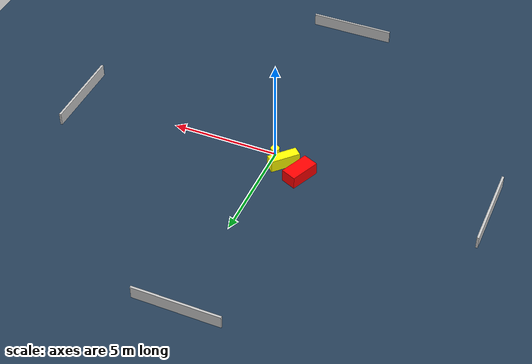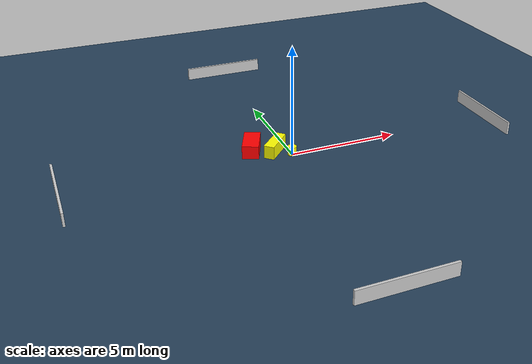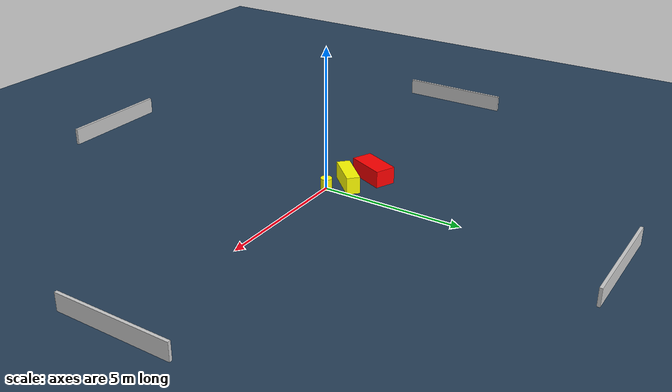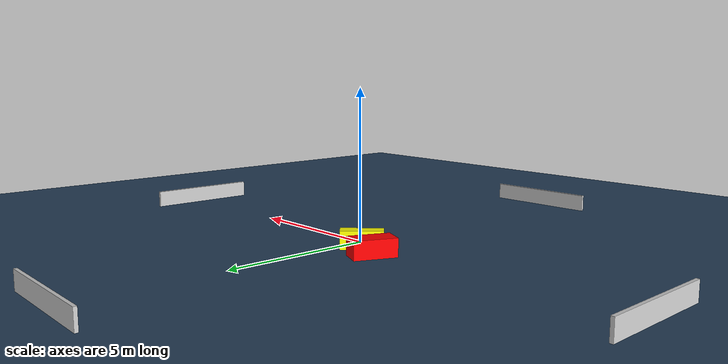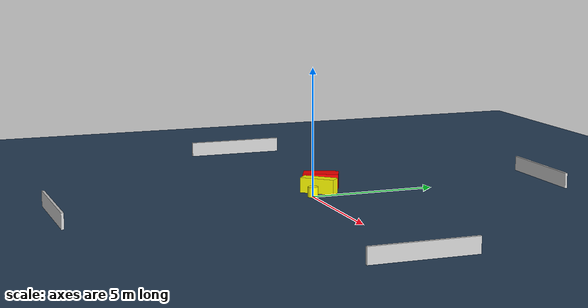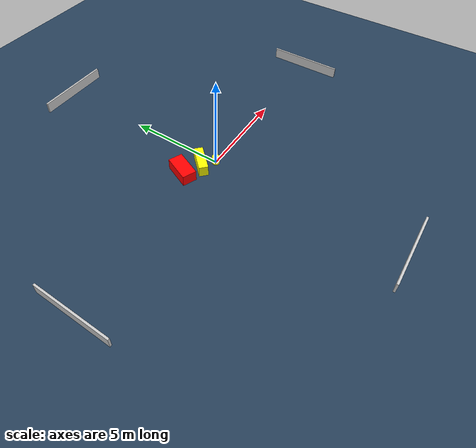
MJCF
<?xml version="1.0" ?>
<mujoco model="generated_environment">
  <option timestep="0.01" integrator="RK4" cone="elliptic"/>
  <default>
    <geom density="1"/>
  </default>
  <asset>
    <texture builtin="gradient" height="3072" name="skybox" rgb1="0.3 0.5 0.7" rgb2="0 0 0" type="skybox" width="512"/>
    <texture builtin="checker" height="300" name="groundplane" rgb1="0.2 0.3 0.4" rgb2="0.1 0.2 0.3" type="2d" width="300"/>
    <material name="groundplane" reflectance="0.2" texrepeat="5 5" texture="groundplane"/>
  </asset>
  <worldbody>
    <light dir="0 0 -1" directional="true" pos="0 0 1.5"/>
    <geom condim="3" friction="0.5 0.005 0.001" material="groundplane" name="floor" pos="0 0 0" size="0 0 0.05" type="plane"/>
    <body name="walls">
      <geom name="wall_1" condim="4" pos="-10.0 0.0 0.3" rgba="0.800000011920929 0.800000011920929 0.800000011920929 1.0" size="0.05 2.0 0.3" type="box"/>
      <geom name="wall_2" condim="4" pos="10.0 0.0 0.3" rgba="0.800000011920929 0.800000011920929 0.800000011920929 1.0" size="0.05 2.0 0.3" type="box"/>
      <geom name="wall_3" condim="4" pos="0.0 -10.0 0.3" rgba="0.800000011920929 0.800000011920929 0.800000011920929 1.0" size="2.0 0.05 0.3" type="box"/>
      <geom name="wall_4" condim="4" pos="0.0 10.0 0.3" rgba="0.800000011920929 0.800000011920929 0.800000011920929 1.0" size="2.0 0.05 0.3" type="box"/>
    </body>
    <body name="robot">
      <joint name="joint_x" type="slide" pos="0 0 0" axis="1 0 0"/>
      <joint name="joint_y" type="slide" pos="0 0 0" axis="0 1 0"/>
      <geom name="robot" type="cylinder" pos="0.0 0.0 0.2" size="0.2 0.2 0.0" mass="5.0" friction="1.0 0.005 0.0001" condim="4" rgba="1.0 1.0 0.0 1.0"/>
    </body>
    <body name="obstacle_1_movable">
      <geom name="obstacle_1_movable" condim="4" pos="-0.6187421426034438 0.48796266892315904 0.3" euler="0 0 136.48790918701965" friction="0.0 0.005 0.001" rgba="1.0 1.0 0.0 1.0" size="0.23445578364119318 0.6949314838938347 0.3" type="box" mass="0.1"/>
      <joint type="free"/>
    </body>
    <body name="obstacle_2_static">
      <geom name="obstacle_2_static" condim="4" pos="-1.5681958110548166 0.9311559990197474 0.3" euler="0 0 66.58623355637073" friction="0.0 0.005 0.001" rgba="1.0 0.0 0.0 1.0" size="0.7023541490270229 0.36858076027577785 0.3" type="box"/>
    </body>
  </worldbody>
  <actuator>
    <motor name="actuator_x" joint="joint_x" gear="1" ctrlrange="-1 1"/>
    <motor name="actuator_y" joint="joint_y" gear="1" ctrlrange="-1 1"/>
  </actuator>
</mujoco>
